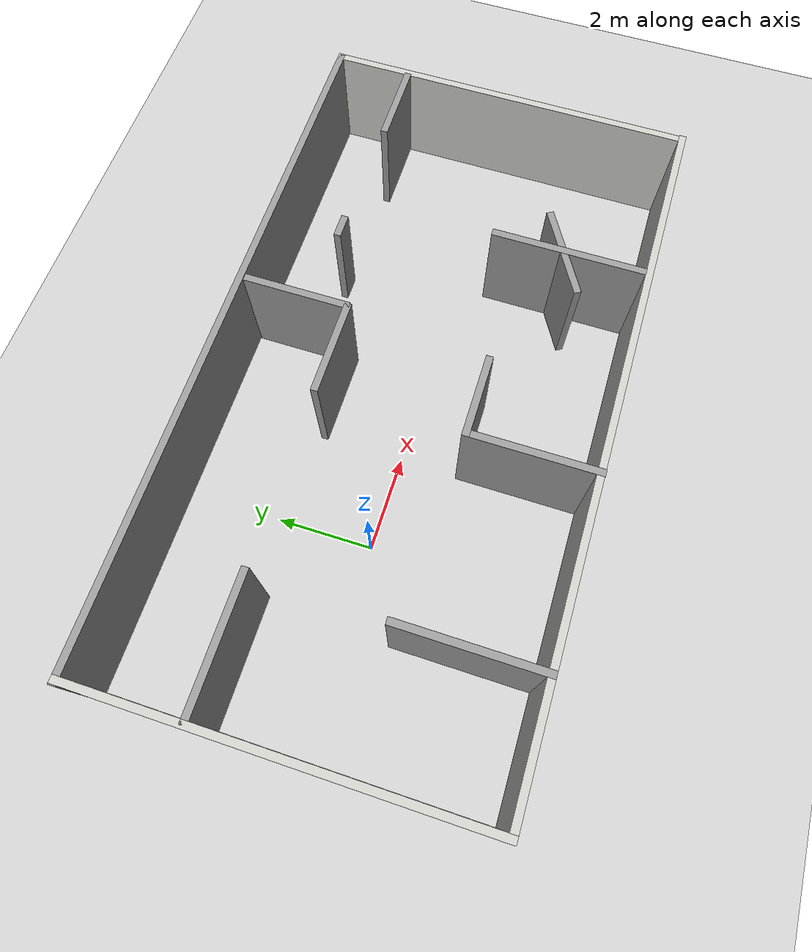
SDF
<sdf version="1.7">
 <world name="default">
  <light name="sun" type="directional">
   <pose>0 0 10 0 -0 0</pose>
   <diffuse>0.8 0.8 0.8 1</diffuse>
   <specular>0.2 0.2 0.2 1</specular>
   <attenuation>
    <range>1000</range>
    <constant>0.9</constant>
    <linear>0.01</linear>
    <quadratic>0.001</quadratic>
   </attenuation>
   <direction>-0.5 0.1 -0.9</direction>
   <spot><inner_angle>0</inner_angle><outer_angle>0</outer_angle><falloff>0</falloff></spot>
  </light>
  <model name="ground_plane">
   <static>1</static>
   <link name="link">
    <collision name="collision">
     <geometry><plane><normal>0 0 1</normal><size>100 100</size></plane></geometry>
     <surface>
      <contact><collide_bitmask>65535</collide_bitmask></contact>
      <friction><ode><mu>100</mu><mu2>50</mu2></ode></friction>
     </surface>
    </collision>
    <visual name="visual">
     <cast_shadows>0</cast_shadows>
     <geometry><plane><normal>0 0 1</normal><size>100 100</size></plane></geometry>
     <material>
      <script><uri>file://media/materials/scripts/gazebo.material</uri><name>Gazebo/Grey</name></script>
     </material>
    </visual>
   </link>
  </model>
  <gravity>0 0 -9.8</gravity>
  <magnetic_field>6e-06 2.3e-05 -4.2e-05</magnetic_field>
  <atmosphere type="adiabatic"/>
  <physics type="ode">
   <max_step_size>0.001</max_step_size>
   <real_time_factor>1</real_time_factor>
   <real_time_update_rate>1000</real_time_update_rate>
  </physics>
  <scene><ambient>0.4 0.4 0.4 1</ambient><background>0.7 0.7 0.7 1</background><shadows>1</shadows></scene>
  <spherical_coordinates>
   <surface_model>EARTH_WGS84</surface_model>
   <latitude_deg>0</latitude_deg>
   <longitude_deg>0</longitude_deg>
   <elevation>0</elevation>
   <heading_deg>0</heading_deg>
  </spherical_coordinates>
  <model name="myworld2">
   <pose>2.91247 0.082234 0 0 -0 0</pose>
   <link name="Wall_10">
    <collision name="Wall_10_Collision">
     <geometry><box><size>8.05373 0.15 2.5</size></box></geometry>
     <pose>0 0 1.25 0 -0 0</pose>
    </collision>
    <visual name="Wall_10_Visual">
     <pose>0 0 1.25 0 -0 0</pose>
     <geometry><box><size>8.05373 0.15 2.5</size></box></geometry>
     <material>
      <script><uri>file://media/materials/scripts/gazebo.material</uri><name>Gazebo/CeilingTiled</name></script>
      <ambient>1 1 1 1</ambient>
     </material>
     <meta><layer>0</layer></meta>
    </visual>
    <pose>-7.19798 0.005909 0 0 -0 -1.5708</pose>
   </link>
   <link name="Wall_13">
    <collision name="Wall_13_Collision">
     <geometry><box><size>3 0.15 2.5</size></box></geometry>
     <pose>0 0 1.25 0 -0 0</pose>
    </collision>
    <visual name="Wall_13_Visual">
     <pose>0 0 1.25 0 -0 0</pose>
     <geometry><box><size>3 0.15 2.5</size></box></geometry>
     <material>
      <script><uri>file://media/materials/scripts/gazebo.material</uri><name>Gazebo/Grey</name></script>
      <ambient>1 1 1 1</ambient>
     </material>
     <meta><layer>0</layer></meta>
    </visual>
    <pose>-4.59792 -2.51852 0 0 -0 -1.5708</pose>
   </link>
   <link name="Wall_16">
    <collision name="Wall_16_Collision">
     <geometry><box><size>1.75 0.15 2.5</size></box></geometry>
     <pose>0 0 1.25 0 -0 0</pose>
    </collision>
    <visual name="Wall_16_Visual">
     <pose>0 0 1.25 0 -0 0</pose>
     <geometry><box><size>1.75 0.15 2.5</size></box></geometry>
     <material>
      <script><uri>file://media/materials/scripts/gazebo.material</uri><name>Gazebo/Grey</name></script>
      <ambient>1 1 1 1</ambient>
     </material>
     <meta><layer>0</layer></meta>
    </visual>
    <pose>-0.059927 -1.35832 0 0 -0 0</pose>
   </link>
   <link name="Wall_18">
    <collision name="Wall_18_Collision">
     <geometry><box><size>2.75 0.15 2.5</size></box></geometry>
     <pose>0 0 1.25 0 -0 0</pose>
    </collision>
    <visual name="Wall_18_Visual">
     <pose>0 0 1.25 0 -0 0</pose>
     <geometry><box><size>2.75 0.15 2.5</size></box></geometry>
     <material>
      <script><uri>file://media/materials/scripts/gazebo.material</uri><name>Gazebo/Grey</name></script>
      <ambient>1 1 1 1</ambient>
     </material>
     <meta><layer>0</layer></meta>
    </visual>
    <pose>-5.83806 1.62915 0 0 -0 0</pose>
   </link>
   <link name="Wall_20">
    <collision name="Wall_20_Collision">
     <geometry><box><size>2.25 0.15 2.5</size></box></geometry>
     <pose>0 0 1.25 0 -0 0</pose>
    </collision>
    <visual name="Wall_20_Visual">
     <pose>0 0 1.25 0 -0 0</pose>
     <geometry><box><size>2.25 0.15 2.5</size></box></geometry>
     <material>
      <script><uri>file://media/materials/scripts/gazebo.material</uri><name>Gazebo/Grey</name></script>
      <ambient>1 1 1 1</ambient>
     </material>
     <meta><layer>0</layer></meta>
    </visual>
    <pose>1.05083 2.74623 0 0 -0 -1.5708</pose>
   </link>
   <link name="Wall_22">
    <collision name="Wall_22_Collision">
     <geometry><box><size>3.25 0.15 2.5</size></box></geometry>
     <pose>0 0 1.25 0 -0 0</pose>
    </collision>
    <visual name="Wall_22_Visual">
     <pose>0 0 1.25 0 -0 0</pose>
     <geometry><box><size>3.25 0.15 2.5</size></box></geometry>
     <material>
      <script><uri>file://media/materials/scripts/gazebo.material</uri><name>Gazebo/Grey</name></script>
      <ambient>1 1 1 1</ambient>
     </material>
     <meta><layer>0</layer></meta>
    </visual>
    <pose>3.62136 -2.25309 0 0 -0 1.5708</pose>
   </link>
   <link name="Wall_25">
    <collision name="Wall_25_Collision">
     <geometry><box><size>2.75 0.15 2.5</size></box></geometry>
     <pose>0 0 1.25 0 -0 0</pose>
    </collision>
    <visual name="Wall_25_Visual">
     <pose>0 0 1.25 0 -0 0</pose>
     <geometry><box><size>2.75 0.15 2.5</size></box></geometry>
     <material>
      <script><uri>file://media/materials/scripts/gazebo.material</uri><name>Gazebo/Grey</name></script>
      <ambient>1 1 1 1</ambient>
     </material>
     <meta><layer>0</layer></meta>
    </visual>
    <pose>-0.859927 -2.65832 0 0 -0 1.5708</pose>
   </link>
   <link name="Wall_27">
    <collision name="Wall_27_Collision">
     <geometry><box><size>2 0.15 2.5</size></box></geometry>
     <pose>0 0 1.25 0 -0 0</pose>
    </collision>
    <visual name="Wall_27_Visual">
     <pose>0 0 1.25 0 -0 0</pose>
     <geometry><box><size>2 0.15 2.5</size></box></geometry>
     <material>
      <script><uri>file://media/materials/scripts/gazebo.material</uri><name>Gazebo/Grey</name></script>
      <ambient>1 1 1 1</ambient>
     </material>
     <meta><layer>0</layer></meta>
    </visual>
    <pose>0.089522 1.65738 0 0 -0 0</pose>
   </link>
   <link name="Wall_29">
    <collision name="Wall_29_Collision">
     <geometry><box><size>1.75 0.15 2.5</size></box></geometry>
     <pose>0 0 1.25 0 -0 0</pose>
    </collision>
    <visual name="Wall_29_Visual">
     <pose>0 0 1.25 0 -0 0</pose>
     <geometry><box><size>1.75 0.15 2.5</size></box></geometry>
     <material>
      <script><uri>file://media/materials/scripts/gazebo.material</uri><name>Gazebo/Grey</name></script>
      <ambient>1 1 1 1</ambient>
     </material>
     <meta><layer>0</layer></meta>
    </visual>
    <pose>6.3157 2.33925 0 0 -0 3.14159</pose>
   </link>
   <link name="Wall_31">
    <collision name="Wall_31_Collision">
     <geometry><box><size>2 0.15 2.5</size></box></geometry>
     <pose>0 0 1.25 0 -0 0</pose>
    </collision>
    <visual name="Wall_31_Visual">
     <pose>0 0 1.25 0 -0 0</pose>
     <geometry><box><size>2 0.15 2.5</size></box></geometry>
     <material>
      <script><uri>file://media/materials/scripts/gazebo.material</uri><name>Gazebo/Grey</name></script>
      <ambient>1 1 1 1</ambient>
     </material>
     <meta><layer>0</layer></meta>
    </visual>
    <pose>3.58852 -2.15515 0 0 -0 0.523599</pose>
   </link>
   <link name="Wall_33">
    <collision name="Wall_33_Collision">
     <geometry><box><size>0.5 0.15 2.5</size></box></geometry>
     <pose>0 0 1.25 0 -0 0</pose>
    </collision>
    <visual name="Wall_33_Visual">
     <pose>0 0 1.25 0 -0 0</pose>
     <geometry><box><size>0.5 0.15 2.5</size></box></geometry>
     <material>
      <script><uri>file://media/materials/scripts/gazebo.material</uri><name>Gazebo/Grey</name></script>
      <ambient>1 1 1 1</ambient>
     </material>
     <meta><layer>0</layer></meta>
    </visual>
    <pose>2.81347 2.414 0 0 -0 0</pose>
   </link>
   <link name="Wall_7">
    <collision name="Wall_7_Collision">
     <geometry><box><size>14.5457 0.15 2.5</size></box></geometry>
     <pose>0 0 1.25 0 -0 0</pose>
    </collision>
    <visual name="Wall_7_Visual">
     <pose>0 0 1.25 0 -0 0</pose>
     <geometry><box><size>14.5457 0.15 2.5</size></box></geometry>
     <material>
      <script><uri>file://media/materials/scripts/gazebo.material</uri><name>Gazebo/CeilingTiled</name></script>
      <ambient>1 1 1 1</ambient>
     </material>
     <meta><layer>0</layer></meta>
    </visual>
    <pose>0.022761 -3.94589 0 0 -0 0</pose>
   </link>
   <link name="Wall_8">
    <collision name="Wall_8_Collision">
     <geometry><box><size>8.05443 0.15 2.5</size></box></geometry>
     <pose>0 0 1.25 0 -0 0</pose>
    </collision>
    <visual name="Wall_8_Visual">
     <pose>0 0 1.25 0 -0 0</pose>
     <geometry><box><size>8.05443 0.15 2.5</size></box></geometry>
     <material>
      <script><uri>file://media/materials/scripts/gazebo.material</uri><name>Gazebo/CeilingTiled</name></script>
      <ambient>1 1 1 1</ambient>
     </material>
     <meta><layer>0</layer></meta>
    </visual>
    <pose>7.2092 0.005909 0 0 -0 1.5679</pose>
   </link>
   <link name="Wall_9">
    <collision name="Wall_9_Collision">
     <geometry><box><size>14.5686 0.15 2.5</size></box></geometry>
     <pose>0 0 1.25 0 -0 0</pose>
    </collision>
    <visual name="Wall_9_Visual">
     <pose>0 0 1.25 0 -0 0</pose>
     <geometry><box><size>14.5686 0.15 2.5</size></box></geometry>
     <material>
      <script><uri>file://media/materials/scripts/gazebo.material</uri><name>Gazebo/Grey</name></script>
      <ambient>1 1 1 1</ambient>
     </material>
     <meta><layer>0</layer></meta>
    </visual>
    <pose>-0.011544 3.95771 0 0 -0 3.14159</pose>
   </link>
   <static>1</static>
  </model>
 </world>
</sdf>
